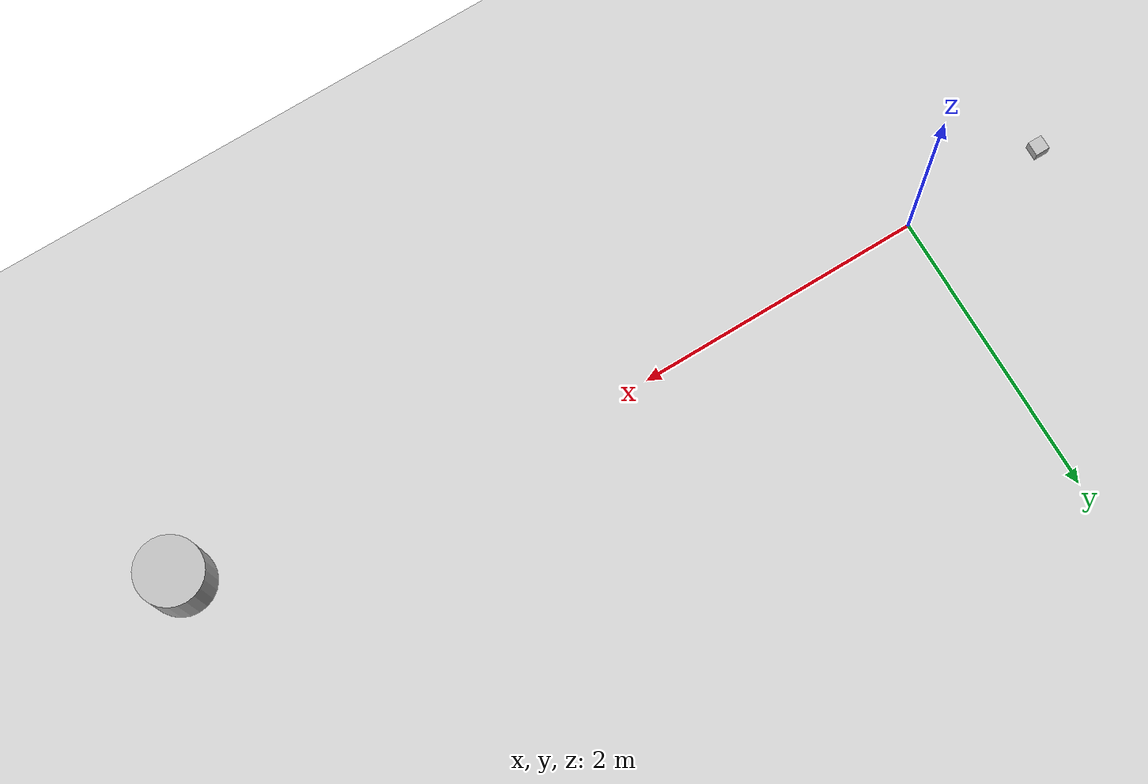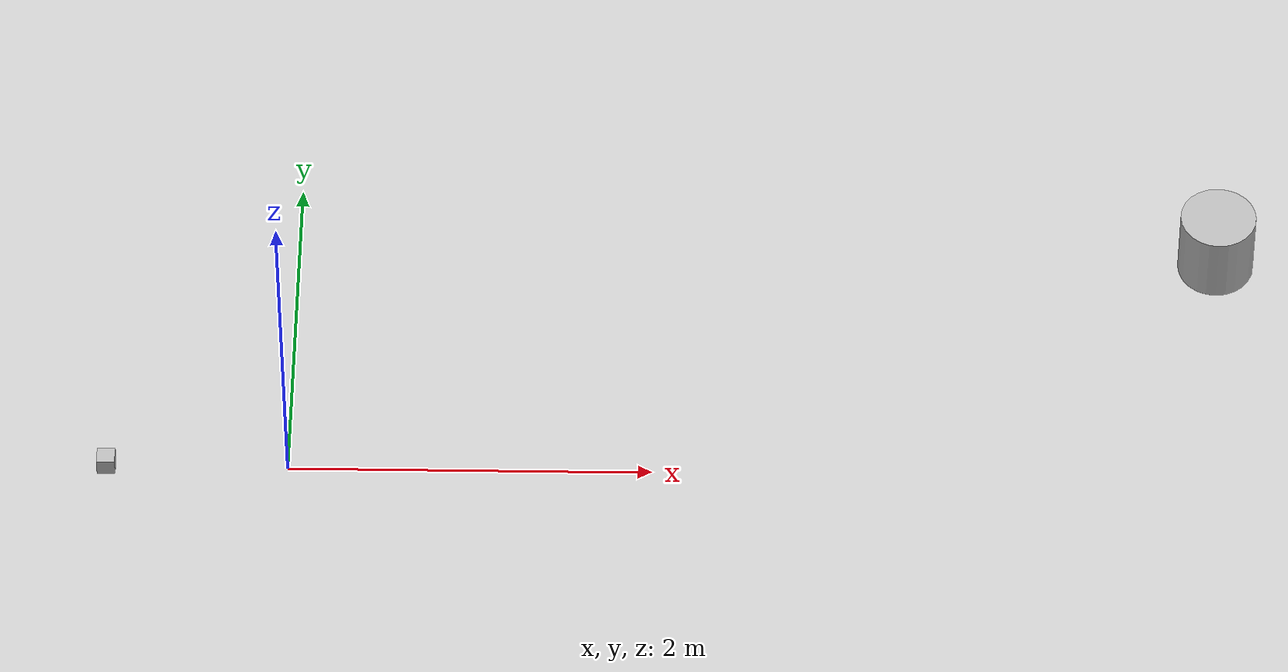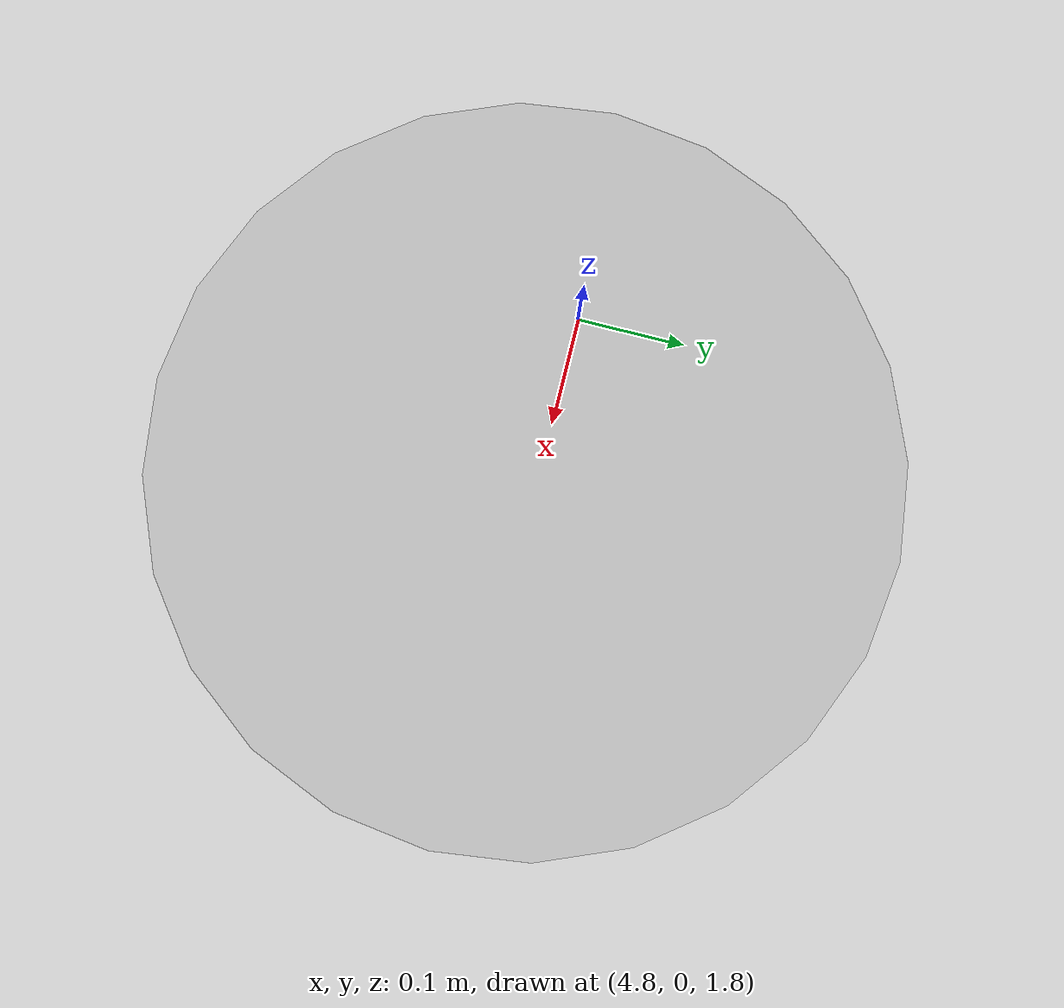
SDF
<?xml version="1.0" ?>
<sdf version="1.7">
  <world name="default">
    <physics name="fast" type="ignored">
      <real_time_factor>0</real_time_factor>
    </physics>

    <plugin
      filename="ignition-gazebo-physics-system"
      name="gz::sim::systems::Physics">
    </plugin>
    <plugin
      filename="ignition-gazebo-scene-broadcaster-system"
      name="gz::sim::systems::SceneBroadcaster">
    </plugin>

    <gui fullscreen="0">

      <!-- 3D scene -->
      <plugin filename="GzScene3D" name="3D View">
        <ignition-gui>
          <title>3D View</title>
          <property type="bool" key="showTitleBar">false</property>
          <property type="bool" key="resizable">false</property>
          <property type="double" key="z">0</property>
          <anchor line="right" target="window" target_line="right"/>
          <anchor line="left" target="window" target_line="left"/>
          <anchor line="top" target="window" target_line="top"/>
          <anchor line="bottom" target="window" target_line="bottom"/>
        </ignition-gui>

        <engine>ogre</engine>
        <scene>scene</scene>
        <ambient_light>0.4 0.4 0.4</ambient_light>
        <background_color>0.8 0.8 0.8</background_color>
        <camera_pose>-1 0 1 0 0.5 0</camera_pose>
      </plugin>

      <!-- World control -->
      <plugin filename="WorldControl" name="World control">
        <ignition-gui>
          <title>World control</title>
          <property type="bool" key="showTitleBar">false</property>
          <property type="bool" key="resizable">false</property>
          <property type="double" key="height">72</property>
          <property type="double" key="width">121</property>
          <property type="double" key="z">1</property>
          <anchor line="left" target="window" target_line="left"/>
          <anchor line="bottom" target="window" target_line="bottom"/>
        </ignition-gui>

        <play_pause>true</play_pause>
        <step>true</step>
        <start_paused>true</start_paused>
        <service>/world/default/control</service>
        <stats_topic>/world/default/stats</stats_topic>

      </plugin>
    </gui>

    <model name="ground_plane">
      <static>true</static>
      <link name="link">
        <collision name="collision">
          <geometry>
            <plane>
              <normal>0 0 1</normal>
              <size>100 100</size>
            </plane>
          </geometry>
        </collision>
        <visual name="visual">
          <geometry>
            <plane>
              <normal>0 0 1</normal>
              <size>100 100</size>
            </plane>
          </geometry>
          <material>
            <ambient>0.8 0.8 0.8 1</ambient>
            <diffuse>0.8 0.8 0.8 1</diffuse>
            <specular>0.8 0.8 0.8 1</specular>
            <emissive>0.8 0.8 0.8 1</emissive>
          </material>
        </visual>
      </link>
    </model>

    <model name="nondefault_canonical" canonical_link="link2">
      <pose>0 0 0 0 0 0</pose>
      <!-- This link will remain at rest -->
      <link name="link1">
        <pose>-1 0 0.05 0 0 0</pose>
        <visual name="visual">
          <geometry>
            <box>
              <size>0.1 0.1 0.1</size>
            </box>
          </geometry>
        </visual>
        <collision name="base_collision">
          <geometry>
            <box>
              <size>0.1 0.1 0.1</size>
            </box>
          </geometry>
        </collision>
      </link>
      <!-- This link will fall and since the model frame is attached to this, the model's pose should change -->
      <link name="link2">
        <pose>5 0 2 0 0 0</pose>
        <visual name="visual">
          <geometry>
            <cylinder>
              <length>0.4</length>
              <radius>0.2</radius>
            </cylinder>
          </geometry>
        </visual>
        <collision name="collision">
          <geometry>
            <cylinder>
              <length>0.4</length>
              <radius>0.2</radius>
            </cylinder>
          </geometry>
        </collision>
      </link>
    </model>
  </world>
</sdf>
